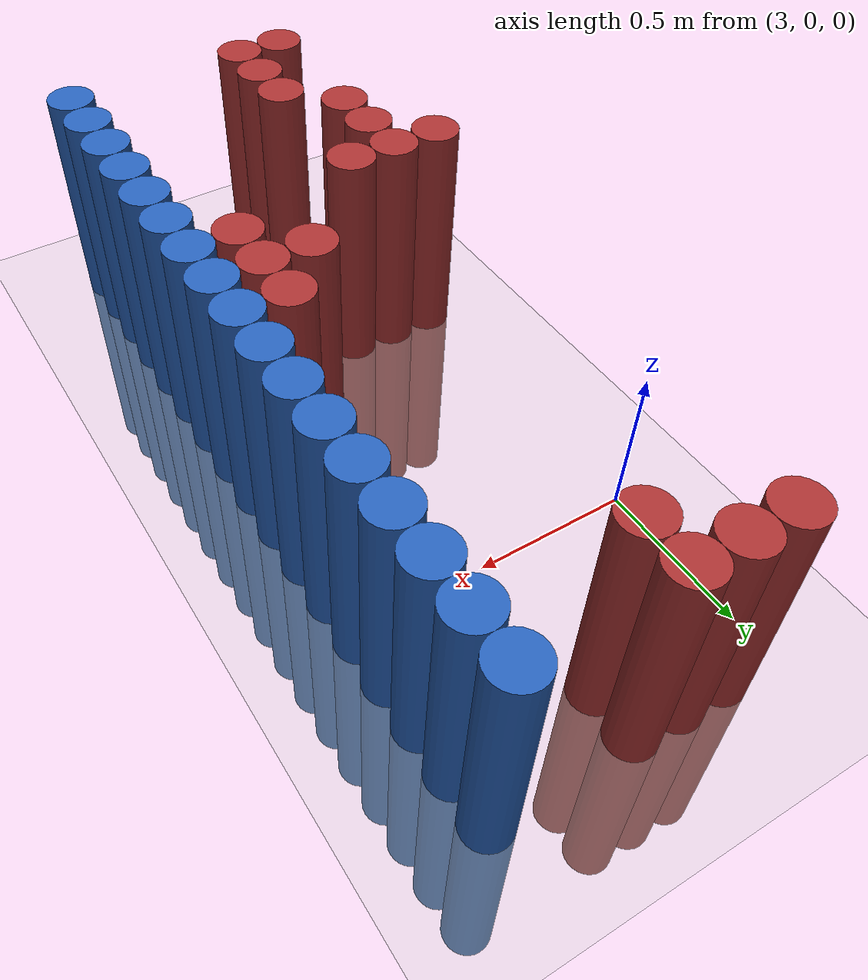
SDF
<sdf version="1.6">
 <world name="default">
  <model name="ground_plane">
   <static>1</static>
   <link name="link">
    <collision name="collision">
     <geometry><plane><normal>0 0 1</normal><size>100 100</size></plane></geometry>
     <surface><friction><ode><mu>100</mu><mu2>50</mu2></ode></friction></surface>
    </collision>
    <visual name="visual">
     <cast_shadows>0</cast_shadows>
     <geometry><plane><normal>0 0 1</normal><size>100 100</size></plane></geometry>
     <material>
      <script><uri>file://media/materials/scripts/gazebo.material</uri><name>Gazebo/Grey</name></script>
     </material>
    </visual>
   </link>
  </model>
  <model name="unit_cylinder_90">
   <static>1</static>
   <pose>3.925000 -1.775000 0.000000 0.000000 0.000000 0.000000</pose>
   <link name="link">
    <inertial>
     <mass>1</mass>
     <inertia><ixx>0.145833</ixx><ixy>0</ixy><ixz>0</ixz><iyy>0.145833</iyy><iyz>0</iyz><izz>0.125</izz></inertia>
    </inertial>
    <collision name="collision">
     <geometry><cylinder><radius>0.075000</radius><length>1.5</length></cylinder></geometry>
    </collision>
    <visual name="visual">
     <geometry><cylinder><radius>0.075000</radius><length>1.5</length></cylinder></geometry>
     <material>
      <ambient>0.152000 0.379000 0.720000 1</ambient>
      <diffuse>0.152000 0.379000 0.720000 1</diffuse>
     </material>
     <material>
      <script><name>Gazebo/Grey</name><uri>file://media/materials/scripts/gazebo.material</uri></script>
     </material>
    </visual>
   </link>
  </model>
  <model name="unit_cylinder_92">
   <static>1</static>
   <pose>3.925000 -1.625000 0.000000 0.000000 0.000000 0.000000</pose>
   <link name="link">
    <inertial>
     <mass>1</mass>
     <inertia><ixx>0.145833</ixx><ixy>0</ixy><ixz>0</ixz><iyy>0.145833</iyy><iyz>0</iyz><izz>0.125</izz></inertia>
    </inertial>
    <collision name="collision">
     <geometry><cylinder><radius>0.075000</radius><length>1.5</length></cylinder></geometry>
    </collision>
    <visual name="visual">
     <geometry><cylinder><radius>0.075000</radius><length>1.5</length></cylinder></geometry>
     <material>
      <ambient>0.152000 0.379000 0.720000 1</ambient>
      <diffuse>0.152000 0.379000 0.720000 1</diffuse>
     </material>
     <material>
      <script><name>Gazebo/Grey</name><uri>file://media/materials/scripts/gazebo.material</uri></script>
     </material>
    </visual>
   </link>
  </model>
  <model name="unit_cylinder_94">
   <static>1</static>
   <pose>3.925000 -1.475000 0.000000 0.000000 0.000000 0.000000</pose>
   <link name="link">
    <inertial>
     <mass>1</mass>
     <inertia><ixx>0.145833</ixx><ixy>0</ixy><ixz>0</ixz><iyy>0.145833</iyy><iyz>0</iyz><izz>0.125</izz></inertia>
    </inertial>
    <collision name="collision">
     <geometry><cylinder><radius>0.075000</radius><length>1.5</length></cylinder></geometry>
    </collision>
    <visual name="visual">
     <geometry><cylinder><radius>0.075000</radius><length>1.5</length></cylinder></geometry>
     <material>
      <ambient>0.152000 0.379000 0.720000 1</ambient>
      <diffuse>0.152000 0.379000 0.720000 1</diffuse>
     </material>
     <material>
      <script><name>Gazebo/Grey</name><uri>file://media/materials/scripts/gazebo.material</uri></script>
     </material>
    </visual>
   </link>
  </model>
  <model name="unit_cylinder_96">
   <static>1</static>
   <pose>3.925000 -1.325000 0.000000 0.000000 0.000000 0.000000</pose>
   <link name="link">
    <inertial>
     <mass>1</mass>
     <inertia><ixx>0.145833</ixx><ixy>0</ixy><ixz>0</ixz><iyy>0.145833</iyy><iyz>0</iyz><izz>0.125</izz></inertia>
    </inertial>
    <collision name="collision">
     <geometry><cylinder><radius>0.075000</radius><length>1.5</length></cylinder></geometry>
    </collision>
    <visual name="visual">
     <geometry><cylinder><radius>0.075000</radius><length>1.5</length></cylinder></geometry>
     <material>
      <ambient>0.152000 0.379000 0.720000 1</ambient>
      <diffuse>0.152000 0.379000 0.720000 1</diffuse>
     </material>
     <material>
      <script><name>Gazebo/Grey</name><uri>file://media/materials/scripts/gazebo.material</uri></script>
     </material>
    </visual>
   </link>
  </model>
  <model name="unit_cylinder_98">
   <static>1</static>
   <pose>3.925000 -1.175000 0.000000 0.000000 0.000000 0.000000</pose>
   <link name="link">
    <inertial>
     <mass>1</mass>
     <inertia><ixx>0.145833</ixx><ixy>0</ixy><ixz>0</ixz><iyy>0.145833</iyy><iyz>0</iyz><izz>0.125</izz></inertia>
    </inertial>
    <collision name="collision">
     <geometry><cylinder><radius>0.075000</radius><length>1.5</length></cylinder></geometry>
    </collision>
    <visual name="visual">
     <geometry><cylinder><radius>0.075000</radius><length>1.5</length></cylinder></geometry>
     <material>
      <ambient>0.152000 0.379000 0.720000 1</ambient>
      <diffuse>0.152000 0.379000 0.720000 1</diffuse>
     </material>
     <material>
      <script><name>Gazebo/Grey</name><uri>file://media/materials/scripts/gazebo.material</uri></script>
     </material>
    </visual>
   </link>
  </model>
  <model name="unit_cylinder_100">
   <static>1</static>
   <pose>3.925000 -1.025000 0.000000 0.000000 0.000000 0.000000</pose>
   <link name="link">
    <inertial>
     <mass>1</mass>
     <inertia><ixx>0.145833</ixx><ixy>0</ixy><ixz>0</ixz><iyy>0.145833</iyy><iyz>0</iyz><izz>0.125</izz></inertia>
    </inertial>
    <collision name="collision">
     <geometry><cylinder><radius>0.075000</radius><length>1.5</length></cylinder></geometry>
    </collision>
    <visual name="visual">
     <geometry><cylinder><radius>0.075000</radius><length>1.5</length></cylinder></geometry>
     <material>
      <ambient>0.152000 0.379000 0.720000 1</ambient>
      <diffuse>0.152000 0.379000 0.720000 1</diffuse>
     </material>
     <material>
      <script><name>Gazebo/Grey</name><uri>file://media/materials/scripts/gazebo.material</uri></script>
     </material>
    </visual>
   </link>
  </model>
  <model name="unit_cylinder_102">
   <static>1</static>
   <pose>3.925000 -0.875000 0.000000 0.000000 0.000000 0.000000</pose>
   <link name="link">
    <inertial>
     <mass>1</mass>
     <inertia><ixx>0.145833</ixx><ixy>0</ixy><ixz>0</ixz><iyy>0.145833</iyy><iyz>0</iyz><izz>0.125</izz></inertia>
    </inertial>
    <collision name="collision">
     <geometry><cylinder><radius>0.075000</radius><length>1.5</length></cylinder></geometry>
    </collision>
    <visual name="visual">
     <geometry><cylinder><radius>0.075000</radius><length>1.5</length></cylinder></geometry>
     <material>
      <ambient>0.152000 0.379000 0.720000 1</ambient>
      <diffuse>0.152000 0.379000 0.720000 1</diffuse>
     </material>
     <material>
      <script><name>Gazebo/Grey</name><uri>file://media/materials/scripts/gazebo.material</uri></script>
     </material>
    </visual>
   </link>
  </model>
  <model name="unit_cylinder_104">
   <static>1</static>
   <pose>3.925000 -0.725000 0.000000 0.000000 0.000000 0.000000</pose>
   <link name="link">
    <inertial>
     <mass>1</mass>
     <inertia><ixx>0.145833</ixx><ixy>0</ixy><ixz>0</ixz><iyy>0.145833</iyy><iyz>0</iyz><izz>0.125</izz></inertia>
    </inertial>
    <collision name="collision">
     <geometry><cylinder><radius>0.075000</radius><length>1.5</length></cylinder></geometry>
    </collision>
    <visual name="visual">
     <geometry><cylinder><radius>0.075000</radius><length>1.5</length></cylinder></geometry>
     <material>
      <ambient>0.152000 0.379000 0.720000 1</ambient>
      <diffuse>0.152000 0.379000 0.720000 1</diffuse>
     </material>
     <material>
      <script><name>Gazebo/Grey</name><uri>file://media/materials/scripts/gazebo.material</uri></script>
     </material>
    </visual>
   </link>
  </model>
  <model name="unit_cylinder_106">
   <static>1</static>
   <pose>3.925000 -0.575000 0.000000 0.000000 0.000000 0.000000</pose>
   <link name="link">
    <inertial>
     <mass>1</mass>
     <inertia><ixx>0.145833</ixx><ixy>0</ixy><ixz>0</ixz><iyy>0.145833</iyy><iyz>0</iyz><izz>0.125</izz></inertia>
    </inertial>
    <collision name="collision">
     <geometry><cylinder><radius>0.075000</radius><length>1.5</length></cylinder></geometry>
    </collision>
    <visual name="visual">
     <geometry><cylinder><radius>0.075000</radius><length>1.5</length></cylinder></geometry>
     <material>
      <ambient>0.152000 0.379000 0.720000 1</ambient>
      <diffuse>0.152000 0.379000 0.720000 1</diffuse>
     </material>
     <material>
      <script><name>Gazebo/Grey</name><uri>file://media/materials/scripts/gazebo.material</uri></script>
     </material>
    </visual>
   </link>
  </model>
  <model name="unit_cylinder_108">
   <static>1</static>
   <pose>3.925000 -0.425000 0.000000 0.000000 0.000000 0.000000</pose>
   <link name="link">
    <inertial>
     <mass>1</mass>
     <inertia><ixx>0.145833</ixx><ixy>0</ixy><ixz>0</ixz><iyy>0.145833</iyy><iyz>0</iyz><izz>0.125</izz></inertia>
    </inertial>
    <collision name="collision">
     <geometry><cylinder><radius>0.075000</radius><length>1.5</length></cylinder></geometry>
    </collision>
    <visual name="visual">
     <geometry><cylinder><radius>0.075000</radius><length>1.5</length></cylinder></geometry>
     <material>
      <ambient>0.152000 0.379000 0.720000 1</ambient>
      <diffuse>0.152000 0.379000 0.720000 1</diffuse>
     </material>
     <material>
      <script><name>Gazebo/Grey</name><uri>file://media/materials/scripts/gazebo.material</uri></script>
     </material>
    </visual>
   </link>
  </model>
  <model name="unit_cylinder_110">
   <static>1</static>
   <pose>3.925000 -0.275000 0.000000 0.000000 0.000000 0.000000</pose>
   <link name="link">
    <inertial>
     <mass>1</mass>
     <inertia><ixx>0.145833</ixx><ixy>0</ixy><ixz>0</ixz><iyy>0.145833</iyy><iyz>0</iyz><izz>0.125</izz></inertia>
    </inertial>
    <collision name="collision">
     <geometry><cylinder><radius>0.075000</radius><length>1.5</length></cylinder></geometry>
    </collision>
    <visual name="visual">
     <geometry><cylinder><radius>0.075000</radius><length>1.5</length></cylinder></geometry>
     <material>
      <ambient>0.152000 0.379000 0.720000 1</ambient>
      <diffuse>0.152000 0.379000 0.720000 1</diffuse>
     </material>
     <material>
      <script><name>Gazebo/Grey</name><uri>file://media/materials/scripts/gazebo.material</uri></script>
     </material>
    </visual>
   </link>
  </model>
  <model name="unit_cylinder_112">
   <static>1</static>
   <pose>3.925000 -0.125000 0.000000 0.000000 0.000000 0.000000</pose>
   <link name="link">
    <inertial>
     <mass>1</mass>
     <inertia><ixx>0.145833</ixx><ixy>0</ixy><ixz>0</ixz><iyy>0.145833</iyy><iyz>0</iyz><izz>0.125</izz></inertia>
    </inertial>
    <collision name="collision">
     <geometry><cylinder><radius>0.075000</radius><length>1.5</length></cylinder></geometry>
    </collision>
    <visual name="visual">
     <geometry><cylinder><radius>0.075000</radius><length>1.5</length></cylinder></geometry>
     <material>
      <ambient>0.152000 0.379000 0.720000 1</ambient>
      <diffuse>0.152000 0.379000 0.720000 1</diffuse>
     </material>
     <material>
      <script><name>Gazebo/Grey</name><uri>file://media/materials/scripts/gazebo.material</uri></script>
     </material>
    </visual>
   </link>
  </model>
  <model name="unit_cylinder_114">
   <static>1</static>
   <pose>3.925000 0.025000 0.000000 0.000000 0.000000 0.000000</pose>
   <link name="link">
    <inertial>
     <mass>1</mass>
     <inertia><ixx>0.145833</ixx><ixy>0</ixy><ixz>0</ixz><iyy>0.145833</iyy><iyz>0</iyz><izz>0.125</izz></inertia>
    </inertial>
    <collision name="collision">
     <geometry><cylinder><radius>0.075000</radius><length>1.5</length></cylinder></geometry>
    </collision>
    <visual name="visual">
     <geometry><cylinder><radius>0.075000</radius><length>1.5</length></cylinder></geometry>
     <material>
      <ambient>0.152000 0.379000 0.720000 1</ambient>
      <diffuse>0.152000 0.379000 0.720000 1</diffuse>
     </material>
     <material>
      <script><name>Gazebo/Grey</name><uri>file://media/materials/scripts/gazebo.material</uri></script>
     </material>
    </visual>
   </link>
  </model>
  <model name="unit_cylinder_116">
   <static>1</static>
   <pose>3.925000 0.175000 0.000000 0.000000 0.000000 0.000000</pose>
   <link name="link">
    <inertial>
     <mass>1</mass>
     <inertia><ixx>0.145833</ixx><ixy>0</ixy><ixz>0</ixz><iyy>0.145833</iyy><iyz>0</iyz><izz>0.125</izz></inertia>
    </inertial>
    <collision name="collision">
     <geometry><cylinder><radius>0.075000</radius><length>1.5</length></cylinder></geometry>
    </collision>
    <visual name="visual">
     <geometry><cylinder><radius>0.075000</radius><length>1.5</length></cylinder></geometry>
     <material>
      <ambient>0.152000 0.379000 0.720000 1</ambient>
      <diffuse>0.152000 0.379000 0.720000 1</diffuse>
     </material>
     <material>
      <script><name>Gazebo/Grey</name><uri>file://media/materials/scripts/gazebo.material</uri></script>
     </material>
    </visual>
   </link>
  </model>
  <model name="unit_cylinder_118">
   <static>1</static>
   <pose>3.925000 0.325000 0.000000 0.000000 0.000000 0.000000</pose>
   <link name="link">
    <inertial>
     <mass>1</mass>
     <inertia><ixx>0.145833</ixx><ixy>0</ixy><ixz>0</ixz><iyy>0.145833</iyy><iyz>0</iyz><izz>0.125</izz></inertia>
    </inertial>
    <collision name="collision">
     <geometry><cylinder><radius>0.075000</radius><length>1.5</length></cylinder></geometry>
    </collision>
    <visual name="visual">
     <geometry><cylinder><radius>0.075000</radius><length>1.5</length></cylinder></geometry>
     <material>
      <ambient>0.152000 0.379000 0.720000 1</ambient>
      <diffuse>0.152000 0.379000 0.720000 1</diffuse>
     </material>
     <material>
      <script><name>Gazebo/Grey</name><uri>file://media/materials/scripts/gazebo.material</uri></script>
     </material>
    </visual>
   </link>
  </model>
  <model name="unit_cylinder_120">
   <static>1</static>
   <pose>3.925000 0.475000 0.000000 0.000000 0.000000 0.000000</pose>
   <link name="link">
    <inertial>
     <mass>1</mass>
     <inertia><ixx>0.145833</ixx><ixy>0</ixy><ixz>0</ixz><iyy>0.145833</iyy><iyz>0</iyz><izz>0.125</izz></inertia>
    </inertial>
    <collision name="collision">
     <geometry><cylinder><radius>0.075000</radius><length>1.5</length></cylinder></geometry>
    </collision>
    <visual name="visual">
     <geometry><cylinder><radius>0.075000</radius><length>1.5</length></cylinder></geometry>
     <material>
      <ambient>0.152000 0.379000 0.720000 1</ambient>
      <diffuse>0.152000 0.379000 0.720000 1</diffuse>
     </material>
     <material>
      <script><name>Gazebo/Grey</name><uri>file://media/materials/scripts/gazebo.material</uri></script>
     </material>
    </visual>
   </link>
  </model>
  <model name="unit_cylinder_122">
   <static>1</static>
   <pose>3.925000 0.625000 0.000000 0.000000 0.000000 0.000000</pose>
   <link name="link">
    <inertial>
     <mass>1</mass>
     <inertia><ixx>0.145833</ixx><ixy>0</ixy><ixz>0</ixz><iyy>0.145833</iyy><iyz>0</iyz><izz>0.125</izz></inertia>
    </inertial>
    <collision name="collision">
     <geometry><cylinder><radius>0.075000</radius><length>1.5</length></cylinder></geometry>
    </collision>
    <visual name="visual">
     <geometry><cylinder><radius>0.075000</radius><length>1.5</length></cylinder></geometry>
     <material>
      <ambient>0.152000 0.379000 0.720000 1</ambient>
      <diffuse>0.152000 0.379000 0.720000 1</diffuse>
     </material>
     <material>
      <script><name>Gazebo/Grey</name><uri>file://media/materials/scripts/gazebo.material</uri></script>
     </material>
    </visual>
   </link>
  </model>
  <model name="unit_cylinder_399">
   <static>1</static>
   <pose>3.025000 -1.025000 0.000000 0.000000 0.000000 0.000000</pose>
   <link name="link">
    <inertial>
     <mass>1</mass>
     <inertia><ixx>0.145833</ixx><ixy>0</ixy><ixz>0</ixz><iyy>0.145833</iyy><iyz>0</iyz><izz>0.125</izz></inertia>
    </inertial>
    <collision name="collision">
     <geometry><cylinder><radius>0.075000</radius><length>1.5</length></cylinder></geometry>
    </collision>
    <visual name="visual">
     <geometry><cylinder><radius>0.075000</radius><length>1.5</length></cylinder></geometry>
     <material>
      <ambient>0.648000 0.192000 0.192000 1</ambient>
      <diffuse>0.648000 0.192000 0.192000 1</diffuse>
     </material>
     <material>
      <script><name>Gazebo/Grey</name><uri>file://media/materials/scripts/gazebo.material</uri></script>
     </material>
    </visual>
   </link>
  </model>
  <model name="unit_cylinder_402">
   <static>1</static>
   <pose>3.175000 -1.775000 0.000000 0.000000 0.000000 0.000000</pose>
   <link name="link">
    <inertial>
     <mass>1</mass>
     <inertia><ixx>0.145833</ixx><ixy>0</ixy><ixz>0</ixz><iyy>0.145833</iyy><iyz>0</iyz><izz>0.125</izz></inertia>
    </inertial>
    <collision name="collision">
     <geometry><cylinder><radius>0.075000</radius><length>1.5</length></cylinder></geometry>
    </collision>
    <visual name="visual">
     <geometry><cylinder><radius>0.075000</radius><length>1.5</length></cylinder></geometry>
     <material>
      <ambient>0.648000 0.192000 0.192000 1</ambient>
      <diffuse>0.648000 0.192000 0.192000 1</diffuse>
     </material>
     <material>
      <script><name>Gazebo/Grey</name><uri>file://media/materials/scripts/gazebo.material</uri></script>
     </material>
    </visual>
   </link>
  </model>
  <model name="unit_cylinder_403">
   <static>1</static>
   <pose>3.175000 -1.325000 0.000000 0.000000 0.000000 0.000000</pose>
   <link name="link">
    <inertial>
     <mass>1</mass>
     <inertia><ixx>0.145833</ixx><ixy>0</ixy><ixz>0</ixz><iyy>0.145833</iyy><iyz>0</iyz><izz>0.125</izz></inertia>
    </inertial>
    <collision name="collision">
     <geometry><cylinder><radius>0.075000</radius><length>1.5</length></cylinder></geometry>
    </collision>
    <visual name="visual">
     <geometry><cylinder><radius>0.075000</radius><length>1.5</length></cylinder></geometry>
     <material>
      <ambient>0.648000 0.192000 0.192000 1</ambient>
      <diffuse>0.648000 0.192000 0.192000 1</diffuse>
     </material>
     <material>
      <script><name>Gazebo/Grey</name><uri>file://media/materials/scripts/gazebo.material</uri></script>
     </material>
    </visual>
   </link>
  </model>
  <model name="unit_cylinder_404">
   <static>1</static>
   <pose>3.175000 -1.175000 0.000000 0.000000 0.000000 0.000000</pose>
   <link name="link">
    <inertial>
     <mass>1</mass>
     <inertia><ixx>0.145833</ixx><ixy>0</ixy><ixz>0</ixz><iyy>0.145833</iyy><iyz>0</iyz><izz>0.125</izz></inertia>
    </inertial>
    <collision name="collision">
     <geometry><cylinder><radius>0.075000</radius><length>1.5</length></cylinder></geometry>
    </collision>
    <visual name="visual">
     <geometry><cylinder><radius>0.075000</radius><length>1.5</length></cylinder></geometry>
     <material>
      <ambient>0.648000 0.192000 0.192000 1</ambient>
      <diffuse>0.648000 0.192000 0.192000 1</diffuse>
     </material>
     <material>
      <script><name>Gazebo/Grey</name><uri>file://media/materials/scripts/gazebo.material</uri></script>
     </material>
    </visual>
   </link>
  </model>
  <model name="unit_cylinder_405">
   <static>1</static>
   <pose>3.175000 -1.025000 0.000000 0.000000 0.000000 0.000000</pose>
   <link name="link">
    <inertial>
     <mass>1</mass>
     <inertia><ixx>0.145833</ixx><ixy>0</ixy><ixz>0</ixz><iyy>0.145833</iyy><iyz>0</iyz><izz>0.125</izz></inertia>
    </inertial>
    <collision name="collision">
     <geometry><cylinder><radius>0.075000</radius><length>1.5</length></cylinder></geometry>
    </collision>
    <visual name="visual">
     <geometry><cylinder><radius>0.075000</radius><length>1.5</length></cylinder></geometry>
     <material>
      <ambient>0.648000 0.192000 0.192000 1</ambient>
      <diffuse>0.648000 0.192000 0.192000 1</diffuse>
     </material>
     <material>
      <script><name>Gazebo/Grey</name><uri>file://media/materials/scripts/gazebo.material</uri></script>
     </material>
    </visual>
   </link>
  </model>
  <model name="unit_cylinder_406">
   <static>1</static>
   <pose>3.175000 0.625000 0.000000 0.000000 0.000000 0.000000</pose>
   <link name="link">
    <inertial>
     <mass>1</mass>
     <inertia><ixx>0.145833</ixx><ixy>0</ixy><ixz>0</ixz><iyy>0.145833</iyy><iyz>0</iyz><izz>0.125</izz></inertia>
    </inertial>
    <collision name="collision">
     <geometry><cylinder><radius>0.075000</radius><length>1.5</length></cylinder></geometry>
    </collision>
    <visual name="visual">
     <geometry><cylinder><radius>0.075000</radius><length>1.5</length></cylinder></geometry>
     <material>
      <ambient>0.648000 0.192000 0.192000 1</ambient>
      <diffuse>0.648000 0.192000 0.192000 1</diffuse>
     </material>
     <material>
      <script><name>Gazebo/Grey</name><uri>file://media/materials/scripts/gazebo.material</uri></script>
     </material>
    </visual>
   </link>
  </model>
  <model name="unit_cylinder_411">
   <static>1</static>
   <pose>3.325000 -1.775000 0.000000 0.000000 0.000000 0.000000</pose>
   <link name="link">
    <inertial>
     <mass>1</mass>
     <inertia><ixx>0.145833</ixx><ixy>0</ixy><ixz>0</ixz><iyy>0.145833</iyy><iyz>0</iyz><izz>0.125</izz></inertia>
    </inertial>
    <collision name="collision">
     <geometry><cylinder><radius>0.075000</radius><length>1.5</length></cylinder></geometry>
    </collision>
    <visual name="visual">
     <geometry><cylinder><radius>0.075000</radius><length>1.5</length></cylinder></geometry>
     <material>
      <ambient>0.648000 0.192000 0.192000 1</ambient>
      <diffuse>0.648000 0.192000 0.192000 1</diffuse>
     </material>
     <material>
      <script><name>Gazebo/Grey</name><uri>file://media/materials/scripts/gazebo.material</uri></script>
     </material>
    </visual>
   </link>
  </model>
  <model name="unit_cylinder_412">
   <static>1</static>
   <pose>3.325000 -1.625000 0.000000 0.000000 0.000000 0.000000</pose>
   <link name="link">
    <inertial>
     <mass>1</mass>
     <inertia><ixx>0.145833</ixx><ixy>0</ixy><ixz>0</ixz><iyy>0.145833</iyy><iyz>0</iyz><izz>0.125</izz></inertia>
    </inertial>
    <collision name="collision">
     <geometry><cylinder><radius>0.075000</radius><length>1.5</length></cylinder></geometry>
    </collision>
    <visual name="visual">
     <geometry><cylinder><radius>0.075000</radius><length>1.5</length></cylinder></geometry>
     <material>
      <ambient>0.648000 0.192000 0.192000 1</ambient>
      <diffuse>0.648000 0.192000 0.192000 1</diffuse>
     </material>
     <material>
      <script><name>Gazebo/Grey</name><uri>file://media/materials/scripts/gazebo.material</uri></script>
     </material>
    </visual>
   </link>
  </model>
  <model name="unit_cylinder_413">
   <static>1</static>
   <pose>3.325000 -1.475000 0.000000 0.000000 0.000000 0.000000</pose>
   <link name="link">
    <inertial>
     <mass>1</mass>
     <inertia><ixx>0.145833</ixx><ixy>0</ixy><ixz>0</ixz><iyy>0.145833</iyy><iyz>0</iyz><izz>0.125</izz></inertia>
    </inertial>
    <collision name="collision">
     <geometry><cylinder><radius>0.075000</radius><length>1.5</length></cylinder></geometry>
    </collision>
    <visual name="visual">
     <geometry><cylinder><radius>0.075000</radius><length>1.5</length></cylinder></geometry>
     <material>
      <ambient>0.648000 0.192000 0.192000 1</ambient>
      <diffuse>0.648000 0.192000 0.192000 1</diffuse>
     </material>
     <material>
      <script><name>Gazebo/Grey</name><uri>file://media/materials/scripts/gazebo.material</uri></script>
     </material>
    </visual>
   </link>
  </model>
  <model name="unit_cylinder_414">
   <static>1</static>
   <pose>3.325000 -1.025000 0.000000 0.000000 0.000000 0.000000</pose>
   <link name="link">
    <inertial>
     <mass>1</mass>
     <inertia><ixx>0.145833</ixx><ixy>0</ixy><ixz>0</ixz><iyy>0.145833</iyy><iyz>0</iyz><izz>0.125</izz></inertia>
    </inertial>
    <collision name="collision">
     <geometry><cylinder><radius>0.075000</radius><length>1.5</length></cylinder></geometry>
    </collision>
    <visual name="visual">
     <geometry><cylinder><radius>0.075000</radius><length>1.5</length></cylinder></geometry>
     <material>
      <ambient>0.648000 0.192000 0.192000 1</ambient>
      <diffuse>0.648000 0.192000 0.192000 1</diffuse>
     </material>
     <material>
      <script><name>Gazebo/Grey</name><uri>file://media/materials/scripts/gazebo.material</uri></script>
     </material>
    </visual>
   </link>
  </model>
  <model name="unit_cylinder_415">
   <static>1</static>
   <pose>3.325000 0.625000 0.000000 0.000000 0.000000 0.000000</pose>
   <link name="link">
    <inertial>
     <mass>1</mass>
     <inertia><ixx>0.145833</ixx><ixy>0</ixy><ixz>0</ixz><iyy>0.145833</iyy><iyz>0</iyz><izz>0.125</izz></inertia>
    </inertial>
    <collision name="collision">
     <geometry><cylinder><radius>0.075000</radius><length>1.5</length></cylinder></geometry>
    </collision>
    <visual name="visual">
     <geometry><cylinder><radius>0.075000</radius><length>1.5</length></cylinder></geometry>
     <material>
      <ambient>0.648000 0.192000 0.192000 1</ambient>
      <diffuse>0.648000 0.192000 0.192000 1</diffuse>
     </material>
     <material>
      <script><name>Gazebo/Grey</name><uri>file://media/materials/scripts/gazebo.material</uri></script>
     </material>
    </visual>
   </link>
  </model>
  <model name="unit_cylinder_420">
   <static>1</static>
   <pose>3.475000 0.475000 0.000000 0.000000 0.000000 0.000000</pose>
   <link name="link">
    <inertial>
     <mass>1</mass>
     <inertia><ixx>0.145833</ixx><ixy>0</ixy><ixz>0</ixz><iyy>0.145833</iyy><iyz>0</iyz><izz>0.125</izz></inertia>
    </inertial>
    <collision name="collision">
     <geometry><cylinder><radius>0.075000</radius><length>1.5</length></cylinder></geometry>
    </collision>
    <visual name="visual">
     <geometry><cylinder><radius>0.075000</radius><length>1.5</length></cylinder></geometry>
     <material>
      <ambient>0.648000 0.192000 0.192000 1</ambient>
      <diffuse>0.648000 0.192000 0.192000 1</diffuse>
     </material>
     <material>
      <script><name>Gazebo/Grey</name><uri>file://media/materials/scripts/gazebo.material</uri></script>
     </material>
    </visual>
   </link>
  </model>
  <model name="unit_cylinder_421">
   <static>1</static>
   <pose>3.475000 0.625000 0.000000 0.000000 0.000000 0.000000</pose>
   <link name="link">
    <inertial>
     <mass>1</mass>
     <inertia><ixx>0.145833</ixx><ixy>0</ixy><ixz>0</ixz><iyy>0.145833</iyy><iyz>0</iyz><izz>0.125</izz></inertia>
    </inertial>
    <collision name="collision">
     <geometry><cylinder><radius>0.075000</radius><length>1.5</length></cylinder></geometry>
    </collision>
    <visual name="visual">
     <geometry><cylinder><radius>0.075000</radius><length>1.5</length></cylinder></geometry>
     <material>
      <ambient>0.648000 0.192000 0.192000 1</ambient>
      <diffuse>0.648000 0.192000 0.192000 1</diffuse>
     </material>
     <material>
      <script><name>Gazebo/Grey</name><uri>file://media/materials/scripts/gazebo.material</uri></script>
     </material>
    </visual>
   </link>
  </model>
  <model name="unit_cylinder_425">
   <static>1</static>
   <pose>3.625000 -0.725000 0.000000 0.000000 0.000000 0.000000</pose>
   <link name="link">
    <inertial>
     <mass>1</mass>
     <inertia><ixx>0.145833</ixx><ixy>0</ixy><ixz>0</ixz><iyy>0.145833</iyy><iyz>0</iyz><izz>0.125</izz></inertia>
    </inertial>
    <collision name="collision">
     <geometry><cylinder><radius>0.075000</radius><length>1.5</length></cylinder></geometry>
    </collision>
    <visual name="visual">
     <geometry><cylinder><radius>0.075000</radius><length>1.5</length></cylinder></geometry>
     <material>
      <ambient>0.648000 0.192000 0.192000 1</ambient>
      <diffuse>0.648000 0.192000 0.192000 1</diffuse>
     </material>
     <material>
      <script><name>Gazebo/Grey</name><uri>file://media/materials/scripts/gazebo.material</uri></script>
     </material>
    </visual>
   </link>
  </model>
  <model name="unit_cylinder_432">
   <static>1</static>
   <pose>3.775000 -0.875000 0.000000 0.000000 0.000000 0.000000</pose>
   <link name="link">
    <inertial>
     <mass>1</mass>
     <inertia><ixx>0.145833</ixx><ixy>0</ixy><ixz>0</ixz><iyy>0.145833</iyy><iyz>0</iyz><izz>0.125</izz></inertia>
    </inertial>
    <collision name="collision">
     <geometry><cylinder><radius>0.075000</radius><length>1.5</length></cylinder></geometry>
    </collision>
    <visual name="visual">
     <geometry><cylinder><radius>0.075000</radius><length>1.5</length></cylinder></geometry>
     <material>
      <ambient>0.648000 0.192000 0.192000 1</ambient>
      <diffuse>0.648000 0.192000 0.192000 1</diffuse>
     </material>
     <material>
      <script><name>Gazebo/Grey</name><uri>file://media/materials/scripts/gazebo.material</uri></script>
     </material>
    </visual>
   </link>
  </model>
  <model name="unit_cylinder_433">
   <static>1</static>
   <pose>3.775000 -0.725000 0.000000 0.000000 0.000000 0.000000</pose>
   <link name="link">
    <inertial>
     <mass>1</mass>
     <inertia><ixx>0.145833</ixx><ixy>0</ixy><ixz>0</ixz><iyy>0.145833</iyy><iyz>0</iyz><izz>0.125</izz></inertia>
    </inertial>
    <collision name="collision">
     <geometry><cylinder><radius>0.075000</radius><length>1.5</length></cylinder></geometry>
    </collision>
    <visual name="visual">
     <geometry><cylinder><radius>0.075000</radius><length>1.5</length></cylinder></geometry>
     <material>
      <ambient>0.648000 0.192000 0.192000 1</ambient>
      <diffuse>0.648000 0.192000 0.192000 1</diffuse>
     </material>
     <material>
      <script><name>Gazebo/Grey</name><uri>file://media/materials/scripts/gazebo.material</uri></script>
     </material>
    </visual>
   </link>
  </model>
  <model name="unit_cylinder_434">
   <static>1</static>
   <pose>3.775000 -0.575000 0.000000 0.000000 0.000000 0.000000</pose>
   <link name="link">
    <inertial>
     <mass>1</mass>
     <inertia><ixx>0.145833</ixx><ixy>0</ixy><ixz>0</ixz><iyy>0.145833</iyy><iyz>0</iyz><izz>0.125</izz></inertia>
    </inertial>
    <collision name="collision">
     <geometry><cylinder><radius>0.075000</radius><length>1.5</length></cylinder></geometry>
    </collision>
    <visual name="visual">
     <geometry><cylinder><radius>0.075000</radius><length>1.5</length></cylinder></geometry>
     <material>
      <ambient>0.648000 0.192000 0.192000 1</ambient>
      <diffuse>0.648000 0.192000 0.192000 1</diffuse>
     </material>
     <material>
      <script><name>Gazebo/Grey</name><uri>file://media/materials/scripts/gazebo.material</uri></script>
     </material>
    </visual>
   </link>
  </model>
  <model name="unit_cylinder_458">
   <static>1</static>
   <pose>3.925000 -1.775000 0.000000 0.000000 0.000000 0.000000</pose>
   <link name="link">
    <inertial>
     <mass>1</mass>
     <inertia><ixx>0.145833</ixx><ixy>0</ixy><ixz>0</ixz><iyy>0.145833</iyy><iyz>0</iyz><izz>0.125</izz></inertia>
    </inertial>
    <collision name="collision">
     <geometry><cylinder><radius>0.075000</radius><length>1.5</length></cylinder></geometry>
    </collision>
    <visual name="visual">
     <geometry><cylinder><radius>0.075000</radius><length>1.5</length></cylinder></geometry>
     <material>
      <ambient>0.152000 0.379000 0.720000 1</ambient>
      <diffuse>0.152000 0.379000 0.720000 1</diffuse>
     </material>
     <material>
      <script><name>Gazebo/Grey</name><uri>file://media/materials/scripts/gazebo.material</uri></script>
     </material>
    </visual>
   </link>
  </model>
  <model name="unit_cylinder_459">
   <static>1</static>
   <pose>3.925000 -1.625000 0.000000 0.000000 0.000000 0.000000</pose>
   <link name="link">
    <inertial>
     <mass>1</mass>
     <inertia><ixx>0.145833</ixx><ixy>0</ixy><ixz>0</ixz><iyy>0.145833</iyy><iyz>0</iyz><izz>0.125</izz></inertia>
    </inertial>
    <collision name="collision">
     <geometry><cylinder><radius>0.075000</radius><length>1.5</length></cylinder></geometry>
    </collision>
    <visual name="visual">
     <geometry><cylinder><radius>0.075000</radius><length>1.5</length></cylinder></geometry>
     <material>
      <ambient>0.152000 0.379000 0.720000 1</ambient>
      <diffuse>0.152000 0.379000 0.720000 1</diffuse>
     </material>
     <material>
      <script><name>Gazebo/Grey</name><uri>file://media/materials/scripts/gazebo.material</uri></script>
     </material>
    </visual>
   </link>
  </model>
  <model name="unit_cylinder_460">
   <static>1</static>
   <pose>3.925000 -1.475000 0.000000 0.000000 0.000000 0.000000</pose>
   <link name="link">
    <inertial>
     <mass>1</mass>
     <inertia><ixx>0.145833</ixx><ixy>0</ixy><ixz>0</ixz><iyy>0.145833</iyy><iyz>0</iyz><izz>0.125</izz></inertia>
    </inertial>
    <collision name="collision">
     <geometry><cylinder><radius>0.075000</radius><length>1.5</length></cylinder></geometry>
    </collision>
    <visual name="visual">
     <geometry><cylinder><radius>0.075000</radius><length>1.5</length></cylinder></geometry>
     <material>
      <ambient>0.152000 0.379000 0.720000 1</ambient>
      <diffuse>0.152000 0.379000 0.720000 1</diffuse>
     </material>
     <material>
      <script><name>Gazebo/Grey</name><uri>file://media/materials/scripts/gazebo.material</uri></script>
     </material>
    </visual>
   </link>
  </model>
  <model name="unit_cylinder_461">
   <static>1</static>
   <pose>3.925000 -1.325000 0.000000 0.000000 0.000000 0.000000</pose>
   <link name="link">
    <inertial>
     <mass>1</mass>
     <inertia><ixx>0.145833</ixx><ixy>0</ixy><ixz>0</ixz><iyy>0.145833</iyy><iyz>0</iyz><izz>0.125</izz></inertia>
    </inertial>
    <collision name="collision">
     <geometry><cylinder><radius>0.075000</radius><length>1.5</length></cylinder></geometry>
    </collision>
    <visual name="visual">
     <geometry><cylinder><radius>0.075000</radius><length>1.5</length></cylinder></geometry>
     <material>
      <ambient>0.152000 0.379000 0.720000 1</ambient>
      <diffuse>0.152000 0.379000 0.720000 1</diffuse>
     </material>
     <material>
      <script><name>Gazebo/Grey</name><uri>file://media/materials/scripts/gazebo.material</uri></script>
     </material>
    </visual>
   </link>
  </model>
  <model name="unit_cylinder_462">
   <static>1</static>
   <pose>3.925000 -1.175000 0.000000 0.000000 0.000000 0.000000</pose>
   <link name="link">
    <inertial>
     <mass>1</mass>
     <inertia><ixx>0.145833</ixx><ixy>0</ixy><ixz>0</ixz><iyy>0.145833</iyy><iyz>0</iyz><izz>0.125</izz></inertia>
    </inertial>
    <collision name="collision">
     <geometry><cylinder><radius>0.075000</radius><length>1.5</length></cylinder></geometry>
    </collision>
    <visual name="visual">
     <geometry><cylinder><radius>0.075000</radius><length>1.5</length></cylinder></geometry>
     <material>
      <ambient>0.152000 0.379000 0.720000 1</ambient>
      <diffuse>0.152000 0.379000 0.720000 1</diffuse>
     </material>
     <material>
      <script><name>Gazebo/Grey</name><uri>file://media/materials/scripts/gazebo.material</uri></script>
     </material>
    </visual>
   </link>
  </model>
  <model name="unit_cylinder_463">
   <static>1</static>
   <pose>3.925000 -1.025000 0.000000 0.000000 0.000000 0.000000</pose>
   <link name="link">
    <inertial>
     <mass>1</mass>
     <inertia><ixx>0.145833</ixx><ixy>0</ixy><ixz>0</ixz><iyy>0.145833</iyy><iyz>0</iyz><izz>0.125</izz></inertia>
    </inertial>
    <collision name="collision">
     <geometry><cylinder><radius>0.075000</radius><length>1.5</length></cylinder></geometry>
    </collision>
    <visual name="visual">
     <geometry><cylinder><radius>0.075000</radius><length>1.5</length></cylinder></geometry>
     <material>
      <ambient>0.152000 0.379000 0.720000 1</ambient>
      <diffuse>0.152000 0.379000 0.720000 1</diffuse>
     </material>
     <material>
      <script><name>Gazebo/Grey</name><uri>file://media/materials/scripts/gazebo.material</uri></script>
     </material>
    </visual>
   </link>
  </model>
  <model name="unit_cylinder_464">
   <static>1</static>
   <pose>3.925000 -0.875000 0.000000 0.000000 0.000000 0.000000</pose>
   <link name="link">
    <inertial>
     <mass>1</mass>
     <inertia><ixx>0.145833</ixx><ixy>0</ixy><ixz>0</ixz><iyy>0.145833</iyy><iyz>0</iyz><izz>0.125</izz></inertia>
    </inertial>
    <collision name="collision">
     <geometry><cylinder><radius>0.075000</radius><length>1.5</length></cylinder></geometry>
    </collision>
    <visual name="visual">
     <geometry><cylinder><radius>0.075000</radius><length>1.5</length></cylinder></geometry>
     <material>
      <ambient>0.152000 0.379000 0.720000 1</ambient>
      <diffuse>0.152000 0.379000 0.720000 1</diffuse>
     </material>
     <material>
      <script><name>Gazebo/Grey</name><uri>file://media/materials/scripts/gazebo.material</uri></script>
     </material>
    </visual>
   </link>
  </model>
  <model name="unit_cylinder_465">
   <static>1</static>
   <pose>3.925000 -0.725000 0.000000 0.000000 0.000000 0.000000</pose>
   <link name="link">
    <inertial>
     <mass>1</mass>
     <inertia><ixx>0.145833</ixx><ixy>0</ixy><ixz>0</ixz><iyy>0.145833</iyy><iyz>0</iyz><izz>0.125</izz></inertia>
    </inertial>
    <collision name="collision">
     <geometry><cylinder><radius>0.075000</radius><length>1.5</length></cylinder></geometry>
    </collision>
    <visual name="visual">
     <geometry><cylinder><radius>0.075000</radius><length>1.5</length></cylinder></geometry>
     <material>
      <ambient>0.152000 0.379000 0.720000 1</ambient>
      <diffuse>0.152000 0.379000 0.720000 1</diffuse>
     </material>
     <material>
      <script><name>Gazebo/Grey</name><uri>file://media/materials/scripts/gazebo.material</uri></script>
     </material>
    </visual>
   </link>
  </model>
  <model name="unit_cylinder_466">
   <static>1</static>
   <pose>3.925000 -0.575000 0.000000 0.000000 0.000000 0.000000</pose>
   <link name="link">
    <inertial>
     <mass>1</mass>
     <inertia><ixx>0.145833</ixx><ixy>0</ixy><ixz>0</ixz><iyy>0.145833</iyy><iyz>0</iyz><izz>0.125</izz></inertia>
    </inertial>
    <collision name="collision">
     <geometry><cylinder><radius>0.075000</radius><length>1.5</length></cylinder></geometry>
    </collision>
    <visual name="visual">
     <geometry><cylinder><radius>0.075000</radius><length>1.5</length></cylinder></geometry>
     <material>
      <ambient>0.152000 0.379000 0.720000 1</ambient>
      <diffuse>0.152000 0.379000 0.720000 1</diffuse>
     </material>
     <material>
      <script><name>Gazebo/Grey</name><uri>file://media/materials/scripts/gazebo.material</uri></script>
     </material>
    </visual>
   </link>
  </model>
  <model name="unit_cylinder_467">
   <static>1</static>
   <pose>3.925000 -0.425000 0.000000 0.000000 0.000000 0.000000</pose>
   <link name="link">
    <inertial>
     <mass>1</mass>
     <inertia><ixx>0.145833</ixx><ixy>0</ixy><ixz>0</ixz><iyy>0.145833</iyy><iyz>0</iyz><izz>0.125</izz></inertia>
    </inertial>
    <collision name="collision">
     <geometry><cylinder><radius>0.075000</radius><length>1.5</length></cylinder></geometry>
    </collision>
    <visual name="visual">
     <geometry><cylinder><radius>0.075000</radius><length>1.5</length></cylinder></geometry>
     <material>
      <ambient>0.152000 0.379000 0.720000 1</ambient>
      <diffuse>0.152000 0.379000 0.720000 1</diffuse>
     </material>
     <material>
      <script><name>Gazebo/Grey</name><uri>file://media/materials/scripts/gazebo.material</uri></script>
     </material>
    </visual>
   </link>
  </model>
  <model name="unit_cylinder_468">
   <static>1</static>
   <pose>3.925000 -0.275000 0.000000 0.000000 0.000000 0.000000</pose>
   <link name="link">
    <inertial>
     <mass>1</mass>
     <inertia><ixx>0.145833</ixx><ixy>0</ixy><ixz>0</ixz><iyy>0.145833</iyy><iyz>0</iyz><izz>0.125</izz></inertia>
    </inertial>
    <collision name="collision">
     <geometry><cylinder><radius>0.075000</radius><length>1.5</length></cylinder></geometry>
    </collision>
    <visual name="visual">
     <geometry><cylinder><radius>0.075000</radius><length>1.5</length></cylinder></geometry>
     <material>
      <ambient>0.152000 0.379000 0.720000 1</ambient>
      <diffuse>0.152000 0.379000 0.720000 1</diffuse>
     </material>
     <material>
      <script><name>Gazebo/Grey</name><uri>file://media/materials/scripts/gazebo.material</uri></script>
     </material>
    </visual>
   </link>
  </model>
  <model name="unit_cylinder_469">
   <static>1</static>
   <pose>3.925000 -0.125000 0.000000 0.000000 0.000000 0.000000</pose>
   <link name="link">
    <inertial>
     <mass>1</mass>
     <inertia><ixx>0.145833</ixx><ixy>0</ixy><ixz>0</ixz><iyy>0.145833</iyy><iyz>0</iyz><izz>0.125</izz></inertia>
    </inertial>
    <collision name="collision">
     <geometry><cylinder><radius>0.075000</radius><length>1.5</length></cylinder></geometry>
    </collision>
    <visual name="visual">
     <geometry><cylinder><radius>0.075000</radius><length>1.5</length></cylinder></geometry>
     <material>
      <ambient>0.152000 0.379000 0.720000 1</ambient>
      <diffuse>0.152000 0.379000 0.720000 1</diffuse>
     </material>
     <material>
      <script><name>Gazebo/Grey</name><uri>file://media/materials/scripts/gazebo.material</uri></script>
     </material>
    </visual>
   </link>
  </model>
  <model name="unit_cylinder_470">
   <static>1</static>
   <pose>3.925000 0.025000 0.000000 0.000000 0.000000 0.000000</pose>
   <link name="link">
    <inertial>
     <mass>1</mass>
     <inertia><ixx>0.145833</ixx><ixy>0</ixy><ixz>0</ixz><iyy>0.145833</iyy><iyz>0</iyz><izz>0.125</izz></inertia>
    </inertial>
    <collision name="collision">
     <geometry><cylinder><radius>0.075000</radius><length>1.5</length></cylinder></geometry>
    </collision>
    <visual name="visual">
     <geometry><cylinder><radius>0.075000</radius><length>1.5</length></cylinder></geometry>
     <material>
      <ambient>0.152000 0.379000 0.720000 1</ambient>
      <diffuse>0.152000 0.379000 0.720000 1</diffuse>
     </material>
     <material>
      <script><name>Gazebo/Grey</name><uri>file://media/materials/scripts/gazebo.material</uri></script>
     </material>
    </visual>
   </link>
  </model>
  <model name="unit_cylinder_471">
   <static>1</static>
   <pose>3.925000 0.175000 0.000000 0.000000 0.000000 0.000000</pose>
   <link name="link">
    <inertial>
     <mass>1</mass>
     <inertia><ixx>0.145833</ixx><ixy>0</ixy><ixz>0</ixz><iyy>0.145833</iyy><iyz>0</iyz><izz>0.125</izz></inertia>
    </inertial>
    <collision name="collision">
     <geometry><cylinder><radius>0.075000</radius><length>1.5</length></cylinder></geometry>
    </collision>
    <visual name="visual">
     <geometry><cylinder><radius>0.075000</radius><length>1.5</length></cylinder></geometry>
     <material>
      <ambient>0.152000 0.379000 0.720000 1</ambient>
      <diffuse>0.152000 0.379000 0.720000 1</diffuse>
     </material>
     <material>
      <script><name>Gazebo/Grey</name><uri>file://media/materials/scripts/gazebo.material</uri></script>
     </material>
    </visual>
   </link>
  </model>
  <model name="unit_cylinder_472">
   <static>1</static>
   <pose>3.925000 0.325000 0.000000 0.000000 0.000000 0.000000</pose>
   <link name="link">
    <inertial>
     <mass>1</mass>
     <inertia><ixx>0.145833</ixx><ixy>0</ixy><ixz>0</ixz><iyy>0.145833</iyy><iyz>0</iyz><izz>0.125</izz></inertia>
    </inertial>
    <collision name="collision">
     <geometry><cylinder><radius>0.075000</radius><length>1.5</length></cylinder></geometry>
    </collision>
    <visual name="visual">
     <geometry><cylinder><radius>0.075000</radius><length>1.5</length></cylinder></geometry>
     <material>
      <ambient>0.152000 0.379000 0.720000 1</ambient>
      <diffuse>0.152000 0.379000 0.720000 1</diffuse>
     </material>
     <material>
      <script><name>Gazebo/Grey</name><uri>file://media/materials/scripts/gazebo.material</uri></script>
     </material>
    </visual>
   </link>
  </model>
  <model name="unit_cylinder_473">
   <static>1</static>
   <pose>3.925000 0.475000 0.000000 0.000000 0.000000 0.000000</pose>
   <link name="link">
    <inertial>
     <mass>1</mass>
     <inertia><ixx>0.145833</ixx><ixy>0</ixy><ixz>0</ixz><iyy>0.145833</iyy><iyz>0</iyz><izz>0.125</izz></inertia>
    </inertial>
    <collision name="collision">
     <geometry><cylinder><radius>0.075000</radius><length>1.5</length></cylinder></geometry>
    </collision>
    <visual name="visual">
     <geometry><cylinder><radius>0.075000</radius><length>1.5</length></cylinder></geometry>
     <material>
      <ambient>0.152000 0.379000 0.720000 1</ambient>
      <diffuse>0.152000 0.379000 0.720000 1</diffuse>
     </material>
     <material>
      <script><name>Gazebo/Grey</name><uri>file://media/materials/scripts/gazebo.material</uri></script>
     </material>
    </visual>
   </link>
  </model>
  <model name="unit_cylinder_474">
   <static>1</static>
   <pose>3.925000 0.625000 0.000000 0.000000 0.000000 0.000000</pose>
   <link name="link">
    <inertial>
     <mass>1</mass>
     <inertia><ixx>0.145833</ixx><ixy>0</ixy><ixz>0</ixz><iyy>0.145833</iyy><iyz>0</iyz><izz>0.125</izz></inertia>
    </inertial>
    <collision name="collision">
     <geometry><cylinder><radius>0.075000</radius><length>1.5</length></cylinder></geometry>
    </collision>
    <visual name="visual">
     <geometry><cylinder><radius>0.075000</radius><length>1.5</length></cylinder></geometry>
     <material>
      <ambient>0.152000 0.379000 0.720000 1</ambient>
      <diffuse>0.152000 0.379000 0.720000 1</diffuse>
     </material>
     <material>
      <script><name>Gazebo/Grey</name><uri>file://media/materials/scripts/gazebo.material</uri></script>
     </material>
    </visual>
   </link>
  </model>
 </world>
</sdf>
